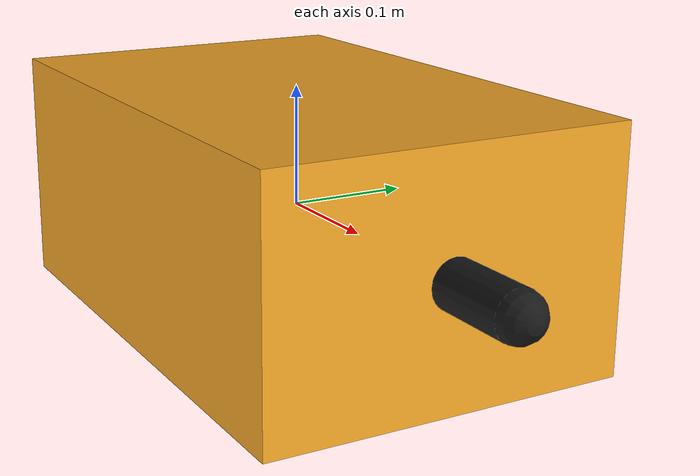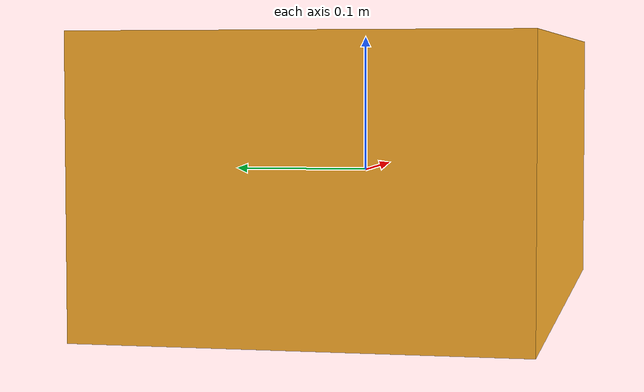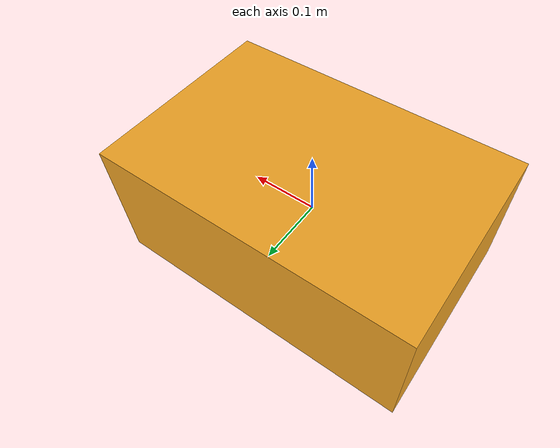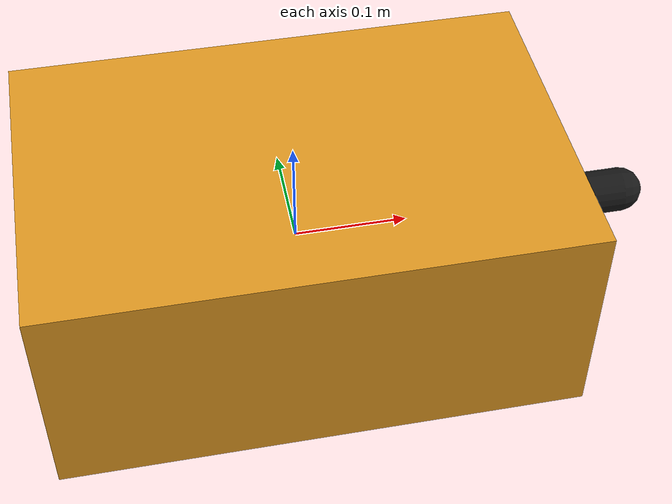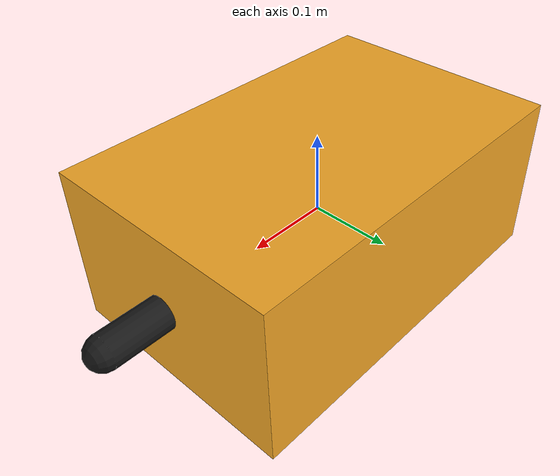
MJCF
<mujoco model="auv_thrusters">
  <option gravity="0 0 -9.81" timestep="0.004" density="1000" viscosity="0.001"/>

  <worldbody>
    <light pos="0 0 3"/>
    <geom type="plane" size="10 10 0.1" pos="0 0 -3" rgba="0.25 0.35 0.45 1"/>

    <body name="rov" pos="0 0 0" gravcomp="1">
      <freejoint/>
      <geom type="box" size="0.23 0.15 0.10" density="1000"
            fluidshape="ellipsoid" fluidcoef="0.5 0.25 1.5 1.0 1.0"
            rgba="0.95 0.65 0.15 1"/>
      <geom type="capsule" fromto="0.23 0 0  0.30 0 0" size="0.02" rgba="0.1 0.1 0.1 1"/>

      <!-- horizontal thrusters (rear left/right): surge + yaw -->
      <site name="t_left"  pos="-0.2  0.12 0" zaxis="1 0 0" size="0.02"/>
      <site name="t_right" pos="-0.2 -0.12 0" zaxis="1 0 0" size="0.02"/>
      <!-- vertical thrusters: heave -->
      <site name="t_vup_f" pos=" 0.15 0 0.06" zaxis="0 0 1" size="0.02"/>
      <site name="t_vup_b" pos="-0.15 0 0.06" zaxis="0 0 1" size="0.02"/>
    </body>
  </worldbody>

  <actuator>
    <thruster site="t_left"  name="m_left"  gear="5" ctrlrange="-1 1"/>
    <thruster site="t_right" name="m_right" gear="5" ctrlrange="-1 1"/>
    <thruster site="t_vup_f" name="m_vf"    gear="5" ctrlrange="-1 1"/>
    <thruster site="t_vup_b" name="m_vb"    gear="5" ctrlrange="-1 1"/>
  </actuator>
</mujoco>
